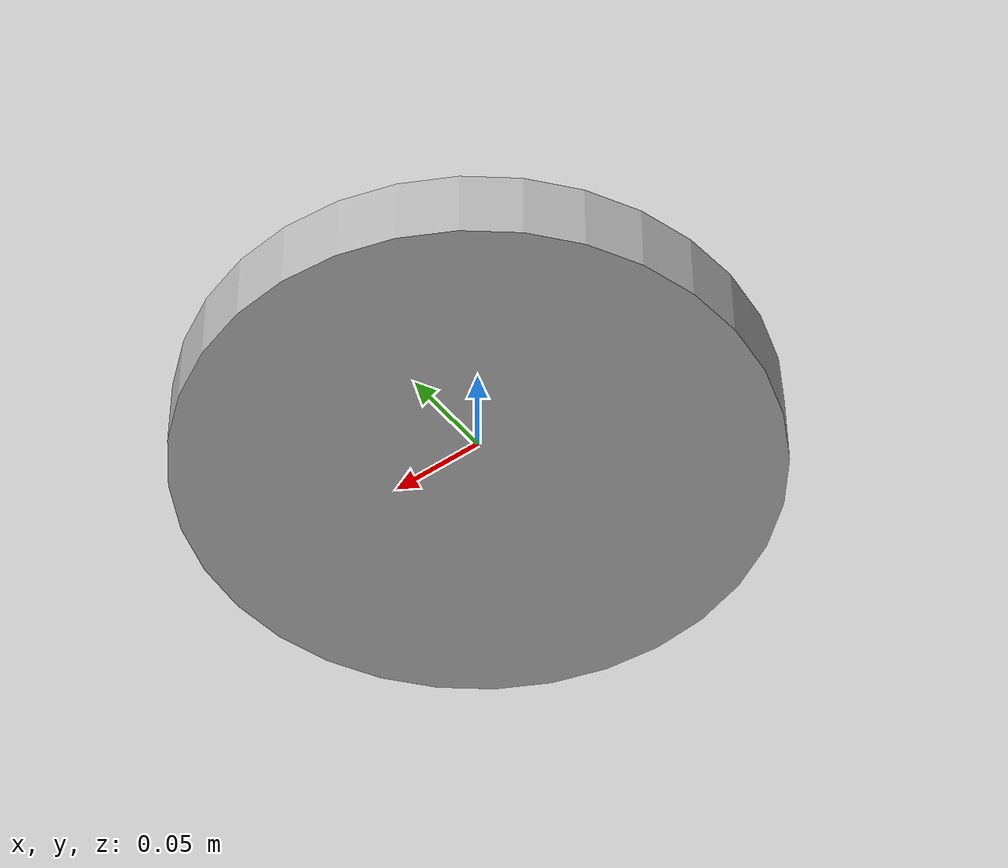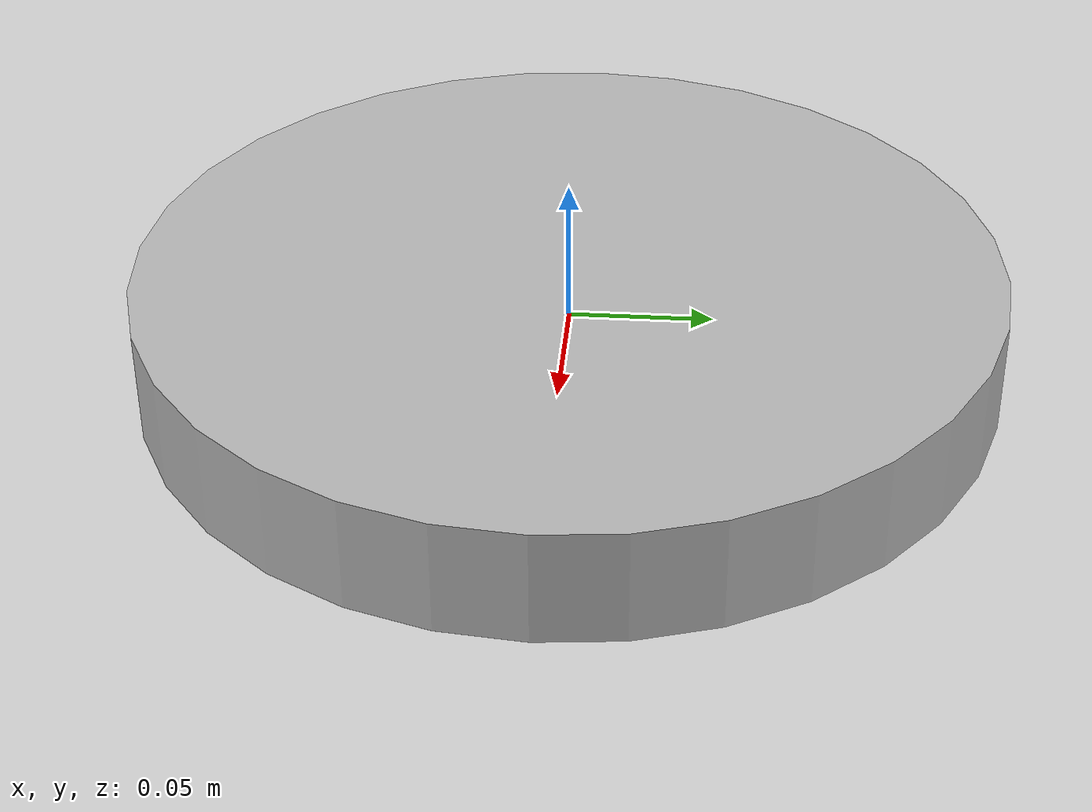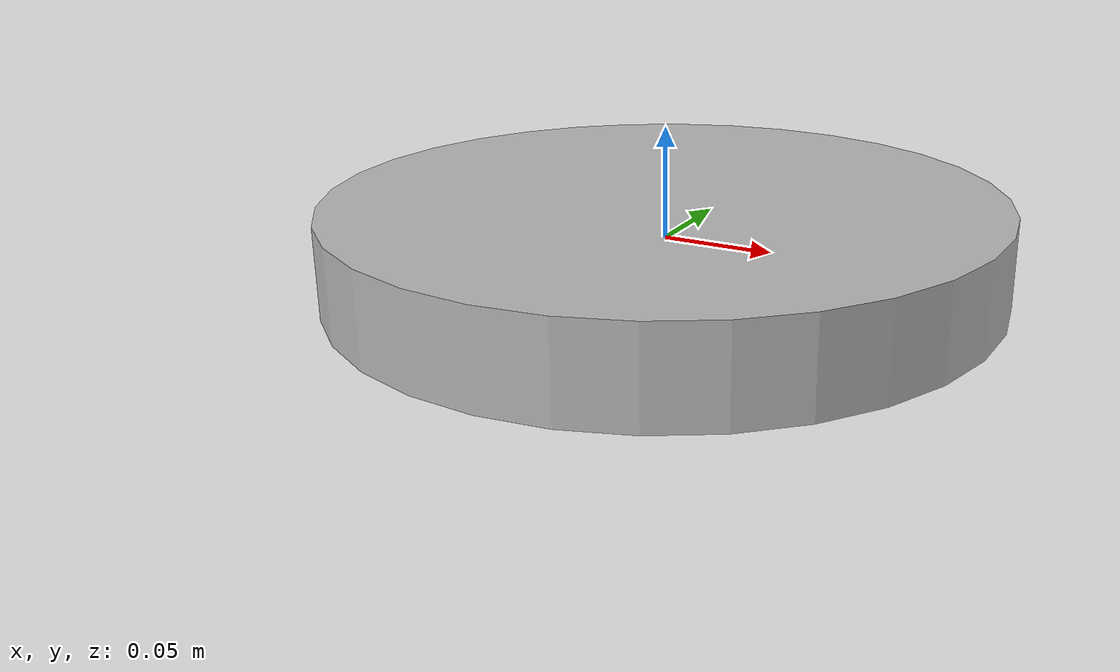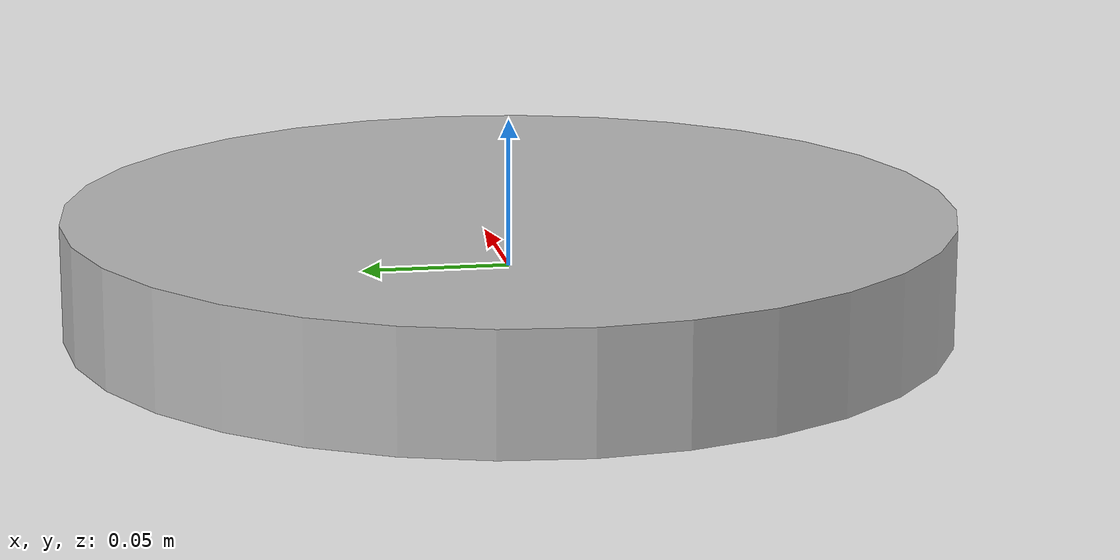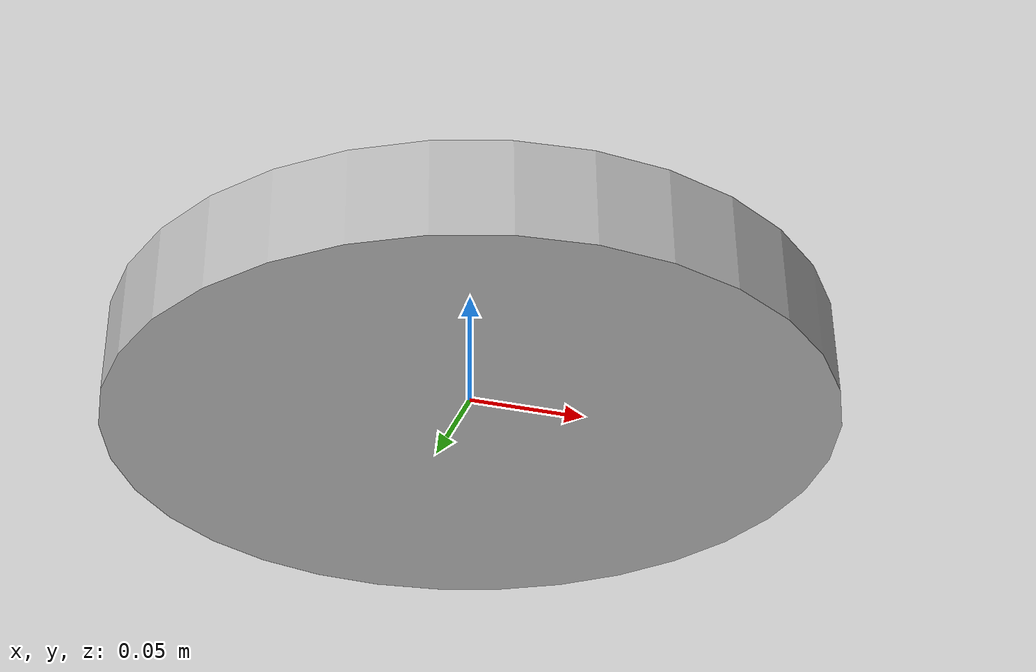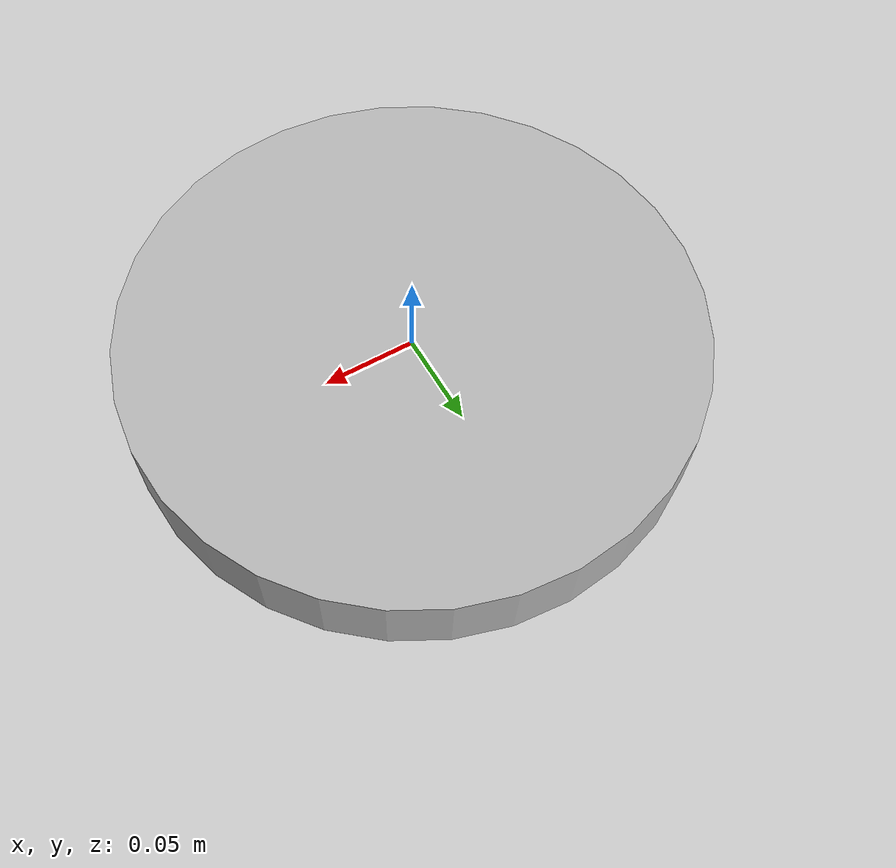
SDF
<?xml version='1.0'?>
<sdf version="1.4">
  <model name="weathercock">
    <pose>0 0 0 0 0 0</pose>
    <static>true</static>

    <link name="weathercock">
      <inertial>
        <mass>0.04</mass>
        <inertia>
          <ixx>0.00011928</ixx>
          <ixy>0.0</ixy>
          <ixz>0.0</ixz>
          <iyy>0.00011928</iyy>
          <iyz>0.0</iyz>
          <izz>0.00023856</izz>
        </inertia>
      </inertial>

      <collision name="weathercock_collision">
        <pose>0 0 0 0 0 0</pose>
        <geometry>
          <cylinder>
            <length>0.020</length>
            <radius>0.150</radius>
          </cylinder>
        </geometry>
      </collision>

      <visual name="weathercock_visual">
        <pose>0 0 0 0 0 0</pose>
        <geometry>
          <mesh>
            <uri>model://weathercock/meshes/weathercock.dae</uri>
            <scale>2 2 2 </scale>
          </mesh>
        </geometry>
      </visual>
    </link>
  </model>
</sdf>
